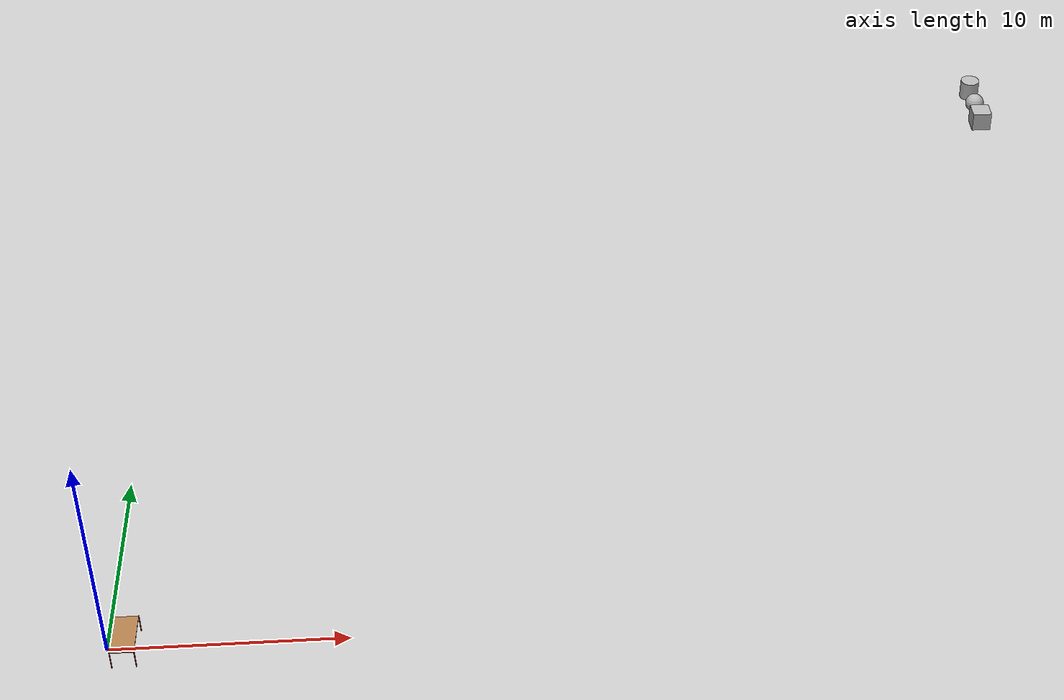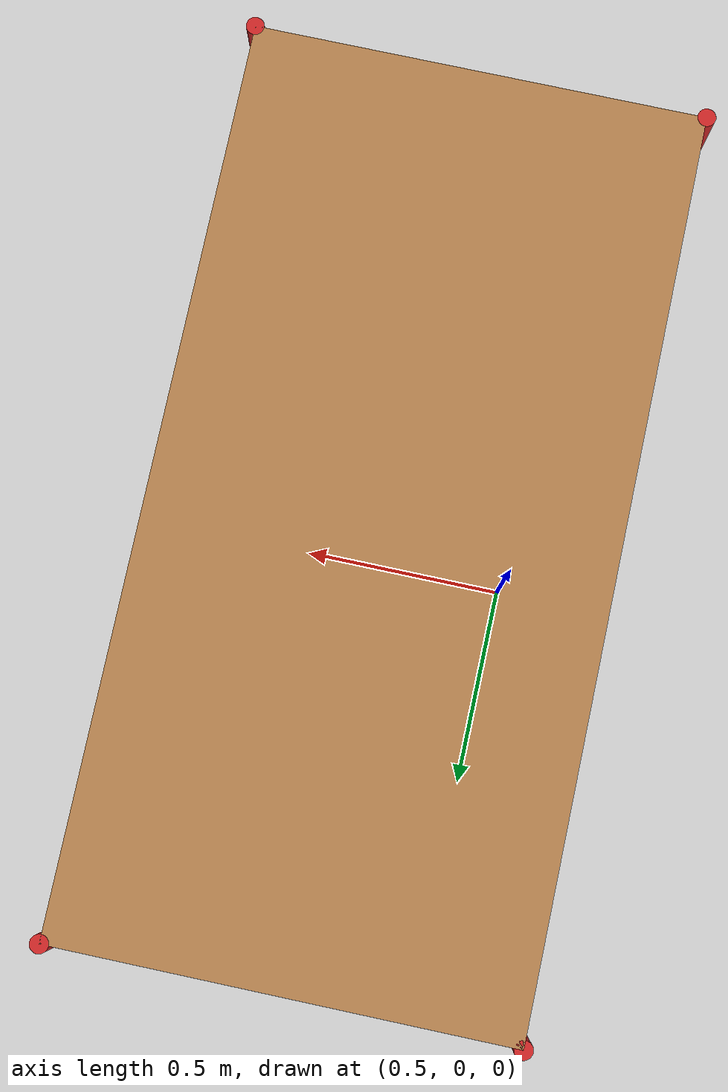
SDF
<sdf version="1.6">
 <world name="default">
  <light name="sun" type="directional">
   <pose>0 0 10 0 -0 0</pose>
   <diffuse>0.8 0.8 0.8 1</diffuse>
   <specular>0.1 0.1 0.1 1</specular>
   <attenuation>
    <range>1000</range>
    <constant>0.9</constant>
    <linear>0.01</linear>
    <quadratic>0.001</quadratic>
   </attenuation>
   <direction>-0.5 0.5 -1</direction>
  </light>
  <model name="ground_plane">
   <static>1</static>
   <link name="link">
    <collision name="collision">
     <geometry><plane><normal>0 0 1</normal><size>100 100</size></plane></geometry>
     <surface><friction><ode><mu>100</mu><mu2>50</mu2></ode></friction></surface>
    </collision>
    <visual name="visual">
     <cast_shadows>0</cast_shadows>
     <geometry><plane><normal>0 0 1</normal><size>100 100</size></plane></geometry>
     <material>
      <script><uri>file://media/materials/scripts/gazebo.material</uri><name>Gazebo/Grey</name></script>
     </material>
    </visual>
   </link>
  </model>
  <gravity>0 0 -9.8</gravity>
  <magnetic_field>6e-06 2.3e-05 -4.2e-05</magnetic_field>
  <atmosphere type="adiabatic"/>
  <physics name="default_physics" default="0" type="ode">
   <max_step_size>0.001</max_step_size>
   <real_time_factor>1</real_time_factor>
   <real_time_update_rate>1000</real_time_update_rate>
  </physics>
  <scene><ambient>0.4 0.4 0.4 1</ambient><background>0.7 0.7 0.7 1</background><shadows>1</shadows></scene>
  <spherical_coordinates>
   <surface_model>EARTH_WGS84</surface_model>
   <latitude_deg>0</latitude_deg>
   <longitude_deg>0</longitude_deg>
   <elevation>0</elevation>
   <heading_deg>0</heading_deg>
  </spherical_coordinates>
  <model name="textured_shapes">
   <pose>43.7623 37.8599 0.5 0 -0 0</pose>
   <link name="box">
    <pose>0 -1.5 0 0 -0 0</pose>
    <collision name="collision"><geometry><box><size>1 1 1</size></box></geometry></collision>
    <visual name="visual">
     <geometry><box><size>1 1 1</size></box></geometry>
     <material>
      <script>
       <uri>model://textured_shapes/materials/scripts</uri>
       <uri>model://textured_shapes/materials/textures</uri>
       <name>TexturedShape/Squares</name>
      </script>
     </material>
    </visual>
    <inertial>
     <inertia><ixx>1</ixx><ixy>0</ixy><ixz>0</ixz><iyy>1</iyy><iyz>0</iyz><izz>1</izz></inertia>
     <mass>1</mass>
    </inertial>
   </link>
   <link name="sphere">
    <collision name="collision"><geometry><sphere><radius>0.5</radius></sphere></geometry></collision>
    <visual name="visual">
     <geometry><sphere><radius>0.5</radius></sphere></geometry>
     <material>
      <script>
       <uri>model://textured_shapes/materials/scripts</uri>
       <uri>model://textured_shapes/materials/textures</uri>
       <name>TexturedShape/Squares</name>
      </script>
     </material>
    </visual>
    <inertial>
     <inertia><ixx>1</ixx><ixy>0</ixy><ixz>0</ixz><iyy>1</iyy><iyz>0</iyz><izz>1</izz></inertia>
     <mass>1</mass>
    </inertial>
   </link>
   <link name="cylinder">
    <pose>0 1.5 0 0 -0 0</pose>
    <collision name="collision">
     <geometry><cylinder><radius>0.5</radius><length>1</length></cylinder></geometry>
    </collision>
    <visual name="visual">
     <geometry><cylinder><radius>0.5</radius><length>1</length></cylinder></geometry>
     <material>
      <script>
       <uri>model://textured_shapes/materials/scripts</uri>
       <uri>model://textured_shapes/materials/textures</uri>
       <name>TexturedShape/Squares</name>
      </script>
     </material>
    </visual>
    <inertial>
     <inertia><ixx>1</ixx><ixy>0</ixy><ixz>0</ixz><iyy>1</iyy><iyz>0</iyz><izz>1</izz></inertia>
     <mass>1</mass>
    </inertial>
   </link>
  </model>
  <model name="table_model">
   <link name="table_top_link">
    <inertial>
     <pose>0.8 0 0.535 0 -0 0</pose>
     <mass>50</mass>
     <inertia><ixx>42.845</ixx><ixy>0</ixy><ixz>0</ixz><iyy>12.845</iyy><iyz>0</iyz><izz>51.04</izz></inertia>
    </inertial>
    <collision name="table_top_link_collision">
     <pose>0.8 0 0.875 0 -0 0</pose>
     <geometry><box><size>1 2 0.05</size></box></geometry>
     <surface>
      <contact><ode><kp>1e+06</kp><kd>1</kd></ode></contact>
      <friction><ode><mu>50</mu><mu2>50</mu2></ode></friction>
     </surface>
    </collision>
    <collision name="table_top_link_fixed_joint_lump__leg1_link_collision_1">
     <pose>1.3 1 0.45 0 -0 0</pose>
     <geometry><cylinder><length>0.9</length><radius>0.02</radius></cylinder></geometry>
     <surface>
      <contact><ode><kp>1e+07</kp><kd>1</kd></ode></contact>
      <friction><ode><mu>1000</mu><mu2>1000</mu2></ode></friction>
     </surface>
    </collision>
    <collision name="table_top_link_fixed_joint_lump__leg2_link_collision_2">
     <pose>0.3 1 0.45 0 -0 0</pose>
     <geometry><cylinder><length>0.9</length><radius>0.02</radius></cylinder></geometry>
     <surface>
      <contact><ode><kp>1e+07</kp><kd>1</kd></ode></contact>
      <friction><ode><mu>1000</mu><mu2>1000</mu2></ode></friction>
     </surface>
    </collision>
    <collision name="table_top_link_fixed_joint_lump__leg3_link_collision_3">
     <pose>1.3 -1 0.45 0 -0 0</pose>
     <geometry><cylinder><length>0.9</length><radius>0.02</radius></cylinder></geometry>
     <surface>
      <contact><ode><kp>1e+07</kp><kd>1</kd></ode></contact>
      <friction><ode><mu>1000</mu><mu2>1000</mu2></ode></friction>
     </surface>
    </collision>
    <collision name="table_top_link_fixed_joint_lump__leg4_link_collision_4">
     <pose>0.3 -1 0.45 0 -0 0</pose>
     <geometry><cylinder><length>0.9</length><radius>0.02</radius></cylinder></geometry>
     <surface>
      <contact><ode><kp>1e+07</kp><kd>1</kd></ode></contact>
      <friction><ode><mu>1000</mu><mu2>1000</mu2></ode></friction>
     </surface>
    </collision>
    <visual name="table_top_link_visual">
     <pose>0.8 0 0.875 0 -0 0</pose>
     <geometry><box><size>1 2 0.05</size></box></geometry>
     <material>
      <script><name>Gazebo/Wood</name><uri>file://media/materials/scripts/gazebo.material</uri></script>
     </material>
    </visual>
    <visual name="table_top_link_fixed_joint_lump__leg1_link_visual_1">
     <pose>1.3 1 0.45 0 -0 0</pose>
     <geometry><cylinder><length>0.9</length><radius>0.02</radius></cylinder></geometry>
     <material>
      <script><name>Gazebo/Red</name><uri>file://media/materials/scripts/gazebo.material</uri></script>
     </material>
    </visual>
    <visual name="table_top_link_fixed_joint_lump__leg2_link_visual_2">
     <pose>0.3 1 0.45 0 -0 0</pose>
     <geometry><cylinder><length>0.9</length><radius>0.02</radius></cylinder></geometry>
     <material>
      <script><name>Gazebo/Red</name><uri>file://media/materials/scripts/gazebo.material</uri></script>
     </material>
    </visual>
    <visual name="table_top_link_fixed_joint_lump__leg3_link_visual_3">
     <pose>1.3 -1 0.45 0 -0 0</pose>
     <geometry><cylinder><length>0.9</length><radius>0.02</radius></cylinder></geometry>
     <material>
      <script><name>Gazebo/Red</name><uri>file://media/materials/scripts/gazebo.material</uri></script>
     </material>
    </visual>
    <visual name="table_top_link_fixed_joint_lump__leg4_link_visual_4">
     <pose>0.3 -1 0.45 0 -0 0</pose>
     <geometry><cylinder><length>0.9</length><radius>0.02</radius></cylinder></geometry>
     <material>
      <script><name>Gazebo/Red</name><uri>file://media/materials/scripts/gazebo.material</uri></script>
     </material>
    </visual>
    <self_collide>1</self_collide>
   </link>
   <static>1</static>
   <pose>0 0 -0.00261 0 -0 0</pose>
  </model>
 </world>
</sdf>
